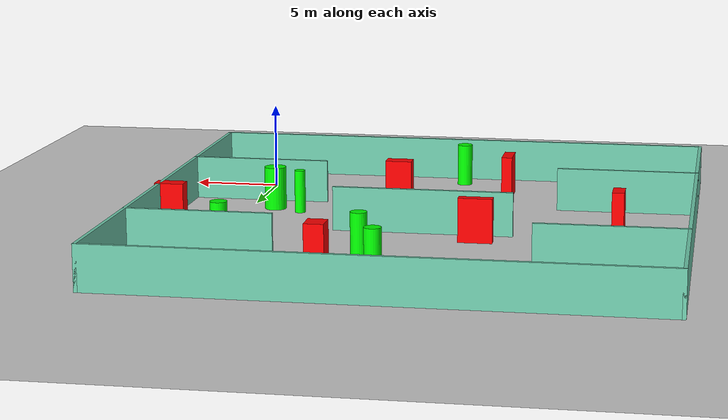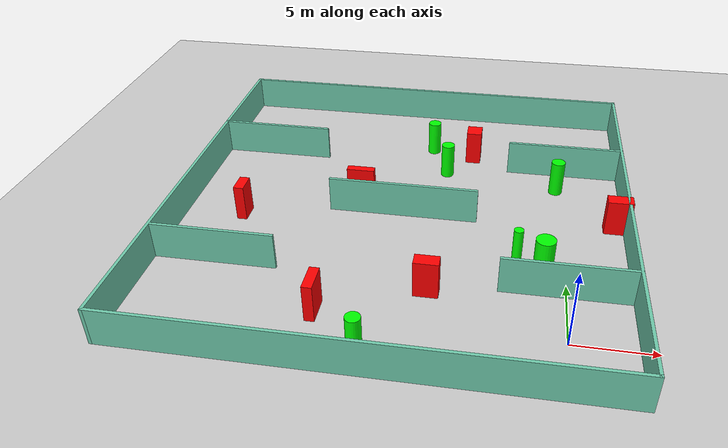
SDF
<sdf version="1.7">
 <world name="default">
  <light name="sun" type="directional">
   <pose>0 0 10 0 -0 0</pose>
   <diffuse>0.8 0.8 0.8 1</diffuse>
   <specular>0.2 0.2 0.2 1</specular>
   <attenuation>
    <range>1000</range>
    <constant>0.9</constant>
    <linear>0.01</linear>
    <quadratic>0.001</quadratic>
   </attenuation>
   <direction>-0.5 0.1 -0.9</direction>
   <spot><inner_angle>0</inner_angle><outer_angle>0</outer_angle><falloff>0</falloff></spot>
  </light>
  <model name="ground_plane">
   <static>1</static>
   <link name="link">
    <collision name="collision">
     <geometry><plane><normal>0 0 1</normal><size>100 100</size></plane></geometry>
     <surface>
      <contact><collide_bitmask>65535</collide_bitmask></contact>
      <friction><ode><mu>100</mu><mu2>50</mu2></ode></friction>
     </surface>
    </collision>
    <visual name="visual">
     <cast_shadows>0</cast_shadows>
     <geometry><plane><normal>0 0 1</normal><size>100 100</size></plane></geometry>
     <material>
      <script><uri>file://media/materials/scripts/gazebo.material</uri><name>Gazebo/Grey</name></script>
     </material>
    </visual>
   </link>
  </model>
  <gravity>0 0 -9.8</gravity>
  <magnetic_field>6e-06 2.3e-05 -4.2e-05</magnetic_field>
  <atmosphere type="adiabatic"/>
  <physics type="ode">
   <max_step_size>0.001</max_step_size>
   <real_time_factor>1</real_time_factor>
   <real_time_update_rate>1000</real_time_update_rate>
  </physics>
  <scene><ambient>0.4 0.4 0.4 1</ambient><background>0.7 0.7 0.7 1</background><shadows>1</shadows></scene>
  <spherical_coordinates>
   <surface_model>EARTH_WGS84</surface_model>
   <latitude_deg>0</latitude_deg>
   <longitude_deg>0</longitude_deg>
   <elevation>0</elevation>
   <heading_deg>0</heading_deg>
  </spherical_coordinates>
  <model name="my_base_walls">
   <link name="Wall_10">
    <collision name="Wall_10_Collision">
     <geometry><box><size>8.2 0.2 2.5</size></box></geometry>
     <pose>0 0 1.25 0 -0 0</pose>
    </collision>
    <visual name="Wall_10_Visual">
     <pose>0 0 1.25 0 -0 0</pose>
     <geometry><box><size>8.2 0.2 2.5</size></box></geometry>
     <material>
      <script><uri>file://media/materials/scripts/gazebo.material</uri><name>Gazebo/Grey</name></script>
      <ambient>0.435294 0.796078 0.67451 1</ambient>
     </material>
     <meta><layer>0</layer></meta>
    </visual>
    <pose>-11 -7 0 0 -0 0</pose>
   </link>
   <link name="Wall_12">
    <collision name="Wall_12_Collision">
     <geometry><box><size>8.2 0.2 2.5</size></box></geometry>
     <pose>0 0 1.25 0 -0 0</pose>
    </collision>
    <visual name="Wall_12_Visual">
     <pose>0 0 1.25 0 -0 0</pose>
     <geometry><box><size>8.2 0.2 2.5</size></box></geometry>
     <material>
      <script><uri>file://media/materials/scripts/gazebo.material</uri><name>Gazebo/Grey</name></script>
      <ambient>0.435294 0.796078 0.67451 1</ambient>
     </material>
     <meta><layer>0</layer></meta>
    </visual>
    <pose>-11 7 0 0 -0 0</pose>
   </link>
   <link name="Wall_14">
    <collision name="Wall_14_Collision">
     <geometry><box><size>8.2 0.2 2.5</size></box></geometry>
     <pose>0 0 1.25 0 -0 0</pose>
    </collision>
    <visual name="Wall_14_Visual">
     <pose>0 0 1.25 0 -0 0</pose>
     <geometry><box><size>8.2 0.2 2.5</size></box></geometry>
     <material>
      <script><uri>file://media/materials/scripts/gazebo.material</uri><name>Gazebo/Grey</name></script>
      <ambient>0.435294 0.796078 0.67451 1</ambient>
     </material>
     <meta><layer>0</layer></meta>
    </visual>
    <pose>11 7 0 0 -0 3.14159</pose>
   </link>
   <link name="Wall_16">
    <collision name="Wall_16_Collision">
     <geometry><box><size>10.2 0.2 2.5</size></box></geometry>
     <pose>0 0 1.25 0 -0 0</pose>
    </collision>
    <visual name="Wall_16_Visual">
     <pose>0 0 1.25 0 -0 0</pose>
     <geometry><box><size>10.2 0.2 2.5</size></box></geometry>
     <material>
      <script><uri>file://media/materials/scripts/gazebo.material</uri><name>Gazebo/Grey</name></script>
      <ambient>0.435294 0.796078 0.67451 1</ambient>
     </material>
     <meta><layer>0</layer></meta>
    </visual>
    <pose>0 0 0 0 -0 3.14159</pose>
   </link>
   <link name="Wall_2">
    <collision name="Wall_2_Collision">
     <geometry><box><size>30.2 0.2 2.5</size></box></geometry>
     <pose>0 0 1.25 0 -0 0</pose>
    </collision>
    <visual name="Wall_2_Visual">
     <pose>0 0 1.25 0 -0 0</pose>
     <geometry><box><size>30.2 0.2 2.5</size></box></geometry>
     <material>
      <script><uri>file://media/materials/scripts/gazebo.material</uri><name>Gazebo/Grey</name></script>
      <ambient>0.435294 0.796078 0.67451 1</ambient>
     </material>
     <meta><layer>0</layer></meta>
    </visual>
    <pose>0 -15 0 0 -0 3.14159</pose>
   </link>
   <link name="Wall_3">
    <collision name="Wall_3_Collision">
     <geometry><box><size>30.2 0.2 2.5</size></box></geometry>
     <pose>0 0 1.25 0 -0 0</pose>
    </collision>
    <visual name="Wall_3_Visual">
     <pose>0 0 1.25 0 -0 0</pose>
     <geometry><box><size>30.2 0.2 2.5</size></box></geometry>
     <material>
      <script><uri>file://media/materials/scripts/gazebo.material</uri><name>Gazebo/Grey</name></script>
      <ambient>0.435294 0.796078 0.67451 1</ambient>
     </material>
     <meta><layer>0</layer></meta>
    </visual>
    <pose>-15 0 0 0 -0 1.5708</pose>
   </link>
   <link name="Wall_4">
    <collision name="Wall_4_Collision">
     <geometry><box><size>30.2 0.2 2.5</size></box></geometry>
     <pose>0 0 1.25 0 -0 0</pose>
    </collision>
    <visual name="Wall_4_Visual">
     <pose>0 0 1.25 0 -0 0</pose>
     <geometry><box><size>30.2 0.2 2.5</size></box></geometry>
     <material>
      <script><uri>file://media/materials/scripts/gazebo.material</uri><name>Gazebo/Grey</name></script>
      <ambient>0.435294 0.796078 0.67451 1</ambient>
     </material>
     <meta><layer>0</layer></meta>
    </visual>
    <pose>0 15 0 0 -0 0</pose>
   </link>
   <link name="Wall_6">
    <collision name="Wall_6_Collision">
     <geometry><box><size>30.2 0.2 2.5</size></box></geometry>
     <pose>0 0 1.25 0 -0 0</pose>
    </collision>
    <visual name="Wall_6_Visual">
     <pose>0 0 1.25 0 -0 0</pose>
     <geometry><box><size>30.2 0.2 2.5</size></box></geometry>
     <material>
      <script><uri>file://media/materials/scripts/gazebo.material</uri><name>Gazebo/Grey</name></script>
      <ambient>0.435294 0.796078 0.67451 1</ambient>
     </material>
     <meta><layer>0</layer></meta>
    </visual>
    <pose>15 0 0 0 -0 1.5708</pose>
   </link>
   <link name="Wall_8">
    <collision name="Wall_8_Collision">
     <geometry><box><size>8.2 0.2 2.5</size></box></geometry>
     <pose>0 0 1.25 0 -0 0</pose>
    </collision>
    <visual name="Wall_8_Visual">
     <pose>0 0 1.25 0 -0 0</pose>
     <geometry><box><size>8.2 0.2 2.5</size></box></geometry>
     <material>
      <script><uri>file://media/materials/scripts/gazebo.material</uri><name>Gazebo/Grey</name></script>
      <ambient>0.435294 0.796078 0.67451 1</ambient>
     </material>
     <meta><layer>0</layer></meta>
    </visual>
    <pose>11 -7 0 0 -0 3.14159</pose>
   </link>
   <static>1</static>
   <pose>-11 11 0 0 -0 0</pose>
  </model>
  <model name="cylinder1">
   <static>1</static>
   <link name="link">
    <inertial>
     <mass>1</mass>
     <inertia><ixx>0.5</ixx><ixy>0</ixy><ixz>0</ixz><iyy>0.5</iyy><iyz>0</iyz><izz>1</izz></inertia>
    </inertial>
    <collision name="collision">
     <geometry><cylinder><radius>0.4623630414092403</radius><length>2.5</length></cylinder></geometry>
    </collision>
    <visual name="visual">
     <geometry><cylinder><radius>0.4623630414092403</radius><length>2.5</length></cylinder></geometry>
     <material>
      <ambient>0 1 0 1</ambient>
      <diffuse>0 1 0 1</diffuse>
      <specular>0.1 0.1 0.1 1</specular>
      <emissive>0 0 0 0</emissive>
     </material>
    </visual>
   </link>
   <pose>-8.537401166811676 16.90099372172001 1.25 0 0 0</pose>
  </model>
  <model name="cylinder2">
   <static>1</static>
   <link name="link">
    <inertial>
     <mass>1</mass>
     <inertia><ixx>0.5</ixx><ixy>0</ixy><ixz>0</ixz><iyy>0.5</iyy><iyz>0</iyz><izz>1</izz></inertia>
    </inertial>
    <collision name="collision">
     <geometry><cylinder><radius>0.4671247610662048</radius><length>2.5</length></cylinder></geometry>
    </collision>
    <visual name="visual">
     <geometry><cylinder><radius>0.4671247610662048</radius><length>2.5</length></cylinder></geometry>
     <material>
      <ambient>0 1 0 1</ambient>
      <diffuse>0 1 0 1</diffuse>
      <specular>0.1 0.1 0.1 1</specular>
      <emissive>0 0 0 0</emissive>
     </material>
    </visual>
   </link>
   <pose>-9.91608913340997 20.21488023421431 1.25 0 0 0</pose>
  </model>
  <model name="cylinder3">
   <static>1</static>
   <link name="link">
    <inertial>
     <mass>1</mass>
     <inertia><ixx>0.5</ixx><ixy>0</ixy><ixz>0</ixz><iyy>0.5</iyy><iyz>0</iyz><izz>1</izz></inertia>
    </inertial>
    <collision name="collision">
     <geometry><cylinder><radius>0.3102099730621882</radius><length>2.5</length></cylinder></geometry>
    </collision>
    <visual name="visual">
     <geometry><cylinder><radius>0.3102099730621882</radius><length>2.5</length></cylinder></geometry>
     <material>
      <ambient>0 1 0 1</ambient>
      <diffuse>0 1 0 1</diffuse>
      <specular>0.1 0.1 0.1 1</specular>
      <emissive>0 0 0 0</emissive>
     </material>
    </visual>
   </link>
   <pose>-3.082967438761184 6.945632871613174 1.25 0 0 0</pose>
  </model>
  <model name="cylinder4">
   <static>1</static>
   <link name="link">
    <inertial>
     <mass>1</mass>
     <inertia><ixx>0.5</ixx><ixy>0</ixy><ixz>0</ixz><iyy>0.5</iyy><iyz>0</iyz><izz>1</izz></inertia>
    </inertial>
    <collision name="collision">
     <geometry><cylinder><radius>0.45379947012012717</radius><length>2.5</length></cylinder></geometry>
    </collision>
    <visual name="visual">
     <geometry><cylinder><radius>0.45379947012012717</radius><length>2.5</length></cylinder></geometry>
     <material>
      <ambient>0 1 0 1</ambient>
      <diffuse>0 1 0 1</diffuse>
      <specular>0.1 0.1 0.1 1</specular>
      <emissive>0 0 0 0</emissive>
     </material>
    </visual>
   </link>
   <pose>-11.534297132483278 -2.32274848069682 1.25 0 0 0</pose>
  </model>
  <model name="cylinder5">
   <static>1</static>
   <link name="link">
    <inertial>
     <mass>1</mass>
     <inertia><ixx>0.5</ixx><ixy>0</ixy><ixz>0</ixz><iyy>0.5</iyy><iyz>0</iyz><izz>1</izz></inertia>
    </inertial>
    <collision name="collision">
     <geometry><cylinder><radius>0.47775937177918215</radius><length>2.5</length></cylinder></geometry>
    </collision>
    <visual name="visual">
     <geometry><cylinder><radius>0.47775937177918215</radius><length>2.5</length></cylinder></geometry>
     <material>
      <ambient>0 1 0 1</ambient>
      <diffuse>0 1 0 1</diffuse>
      <specular>0.1 0.1 0.1 1</specular>
      <emissive>0 0 0 0</emissive>
     </material>
    </visual>
   </link>
   <pose>-0.5398824722247682 15.645827549829232 1.25 0 0 0</pose>
  </model>
  <model name="cylinder6">
   <static>1</static>
   <link name="link">
    <inertial>
     <mass>1</mass>
     <inertia><ixx>0.5</ixx><ixy>0</ixy><ixz>0</ixz><iyy>0.5</iyy><iyz>0</iyz><izz>1</izz></inertia>
    </inertial>
    <collision name="collision">
     <geometry><cylinder><radius>0.6291830222195685</radius><length>2.5</length></cylinder></geometry>
    </collision>
    <visual name="visual">
     <geometry><cylinder><radius>0.6291830222195685</radius><length>2.5</length></cylinder></geometry>
     <material>
      <ambient>0 1 0 1</ambient>
      <diffuse>0 1 0 1</diffuse>
      <specular>0.1 0.1 0.1 1</specular>
      <emissive>0 0 0 0</emissive>
     </material>
    </visual>
   </link>
   <pose>-1.4256318287491432 6.184671553881305 1.25 0 0 0</pose>
  </model>
  <model name="box1">
   <static>1</static>
   <link name="link">
    <inertial>
     <mass>1</mass>
     <inertia><ixx>0.083</ixx><ixy>0</ixy><ixz>0</ixz><iyy>0.083</iyy><iyz>0</iyz><izz>0.083</izz></inertia>
    </inertial>
    <collision name="collision">
     <geometry><box><size>0.6797707347166773 1.4015217030660565 2.5</size></box></geometry>
    </collision>
    <visual name="visual">
     <geometry><box><size>0.6797707347166773 1.4015217030660565 2.5</size></box></geometry>
     <material>
      <ambient>1 0 0 1</ambient>
      <diffuse>1 0 0 1</diffuse>
      <specular>0.1 0.1 0.1 1</specular>
      <emissive>0 0 0 0</emissive>
     </material>
    </visual>
    <sensor name="my_contact" type="contact">
     <contact><collision>box_collision</collision><topic>__default_topic__</topic></contact>
    </sensor>
   </link>
   <pose>-21.838404780265506 9.472936839074517 1.25 0 0 0</pose>
  </model>
  <model name="box2">
   <static>1</static>
   <link name="link">
    <inertial>
     <mass>1</mass>
     <inertia><ixx>0.083</ixx><ixy>0</ixy><ixz>0</ixz><iyy>0.083</iyy><iyz>0</iyz><izz>0.083</izz></inertia>
    </inertial>
    <collision name="collision">
     <geometry><box><size>1.0866102924476702 1.232547871432128 2.5</size></box></geometry>
    </collision>
    <visual name="visual">
     <geometry><box><size>1.0866102924476702 1.232547871432128 2.5</size></box></geometry>
     <material>
      <ambient>1 0 0 1</ambient>
      <diffuse>1 0 0 1</diffuse>
      <specular>0.1 0.1 0.1 1</specular>
      <emissive>0 0 0 0</emissive>
     </material>
    </visual>
    <sensor name="my_contact" type="contact">
     <contact><collision>box_collision</collision><topic>__default_topic__</topic></contact>
    </sensor>
   </link>
   <pose>-6.77893322599404 19.481773272091335 1.25 0 0 0</pose>
  </model>
  <model name="box3">
   <static>1</static>
   <link name="link">
    <inertial>
     <mass>1</mass>
     <inertia><ixx>0.083</ixx><ixy>0</ixy><ixz>0</ixz><iyy>0.083</iyy><iyz>0</iyz><izz>0.083</izz></inertia>
    </inertial>
    <collision name="collision">
     <geometry><box><size>1.6600453108182676 0.8947132443207809 2.5</size></box></geometry>
    </collision>
    <visual name="visual">
     <geometry><box><size>1.6600453108182676 0.8947132443207809 2.5</size></box></geometry>
     <material>
      <ambient>1 0 0 1</ambient>
      <diffuse>1 0 0 1</diffuse>
      <specular>0.1 0.1 0.1 1</specular>
      <emissive>0 0 0 0</emissive>
     </material>
    </visual>
    <sensor name="my_contact" type="contact">
     <contact><collision>box_collision</collision><topic>__default_topic__</topic></contact>
    </sensor>
   </link>
   <pose>3.4169173203456644 11.377596301078736 1.25 0 0 0</pose>
  </model>
  <model name="box4">
   <static>1</static>
   <link name="link">
    <inertial>
     <mass>1</mass>
     <inertia><ixx>0.083</ixx><ixy>0</ixy><ixz>0</ixz><iyy>0.083</iyy><iyz>0</iyz><izz>0.083</izz></inertia>
    </inertial>
    <collision name="collision">
     <geometry><box><size>1.5521964526178476 0.8832761775733873 2.5</size></box></geometry>
    </collision>
    <visual name="visual">
     <geometry><box><size>1.5521964526178476 0.8832761775733873 2.5</size></box></geometry>
     <material>
      <ambient>1 0 0 1</ambient>
      <diffuse>1 0 0 1</diffuse>
      <specular>0.1 0.1 0.1 1</specular>
      <emissive>0 0 0 0</emissive>
     </material>
    </visual>
    <sensor name="my_contact" type="contact">
     <contact><collision>box_collision</collision><topic>__default_topic__</topic></contact>
    </sensor>
   </link>
   <pose>-8.320974187539807 3.1107111061439046 1.25 0 0 0</pose>
  </model>
  <model name="box5">
   <static>1</static>
   <link name="link">
    <inertial>
     <mass>1</mass>
     <inertia><ixx>0.083</ixx><ixy>0</ixy><ixz>0</ixz><iyy>0.083</iyy><iyz>0</iyz><izz>0.083</izz></inertia>
    </inertial>
    <collision name="collision">
     <geometry><box><size>0.6250633979131729 1.826338153853071 2.5</size></box></geometry>
    </collision>
    <visual name="visual">
     <geometry><box><size>0.6250633979131729 1.826338153853071 2.5</size></box></geometry>
     <material>
      <ambient>1 0 0 1</ambient>
      <diffuse>1 0 0 1</diffuse>
      <specular>0.1 0.1 0.1 1</specular>
      <emissive>0 0 0 0</emissive>
     </material>
    </visual>
    <sensor name="my_contact" type="contact">
     <contact><collision>box_collision</collision><topic>__default_topic__</topic></contact>
    </sensor>
   </link>
   <pose>-14.586528484970737 0.48655808024662583 1.25 0 0 0</pose>
  </model>
  <model name="box6">
   <static>1</static>
   <link name="link">
    <inertial>
     <mass>1</mass>
     <inertia><ixx>0.083</ixx><ixy>0</ixy><ixz>0</ixz><iyy>0.083</iyy><iyz>0</iyz><izz>0.083</izz></inertia>
    </inertial>
    <collision name="collision">
     <geometry><box><size>1.9169294960563399 0.5236431157951612 2.5</size></box></geometry>
    </collision>
    <visual name="visual">
     <geometry><box><size>1.9169294960563399 0.5236431157951612 2.5</size></box></geometry>
     <material>
      <ambient>1 0 0 1</ambient>
      <diffuse>1 0 0 1</diffuse>
      <specular>0.1 0.1 0.1 1</specular>
      <emissive>0 0 0 0</emissive>
     </material>
    </visual>
    <sensor name="my_contact" type="contact">
     <contact><collision>box_collision</collision><topic>__default_topic__</topic></contact>
    </sensor>
   </link>
   <pose>-14.212238893899825 12.597137242402058 1.25 0 0 0</pose>
  </model>
 </world>
</sdf>
